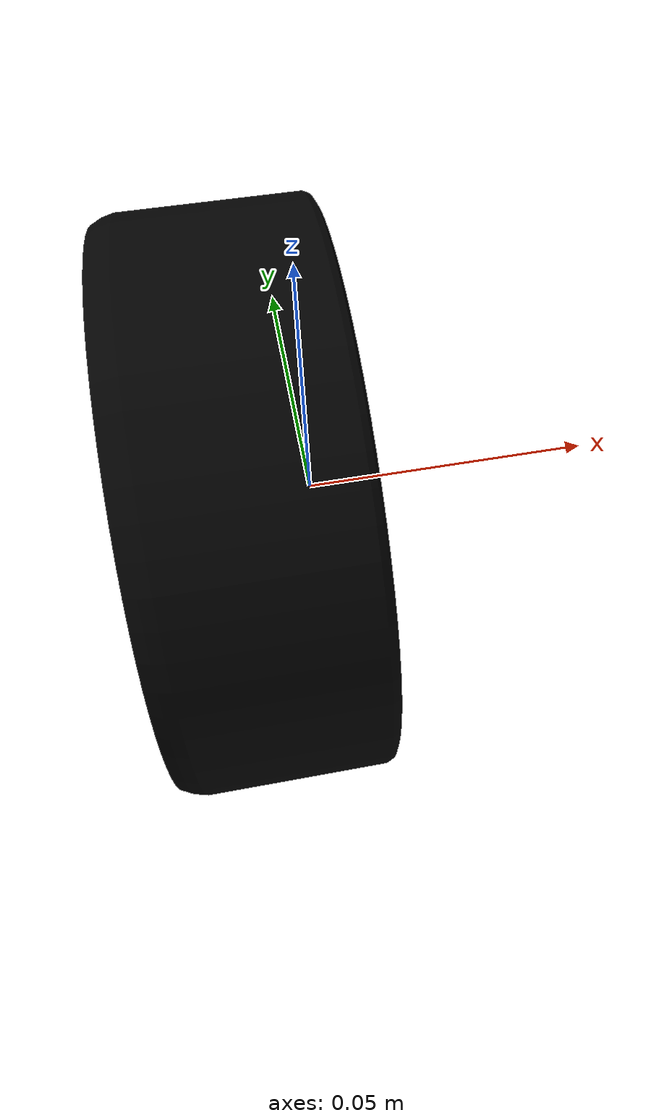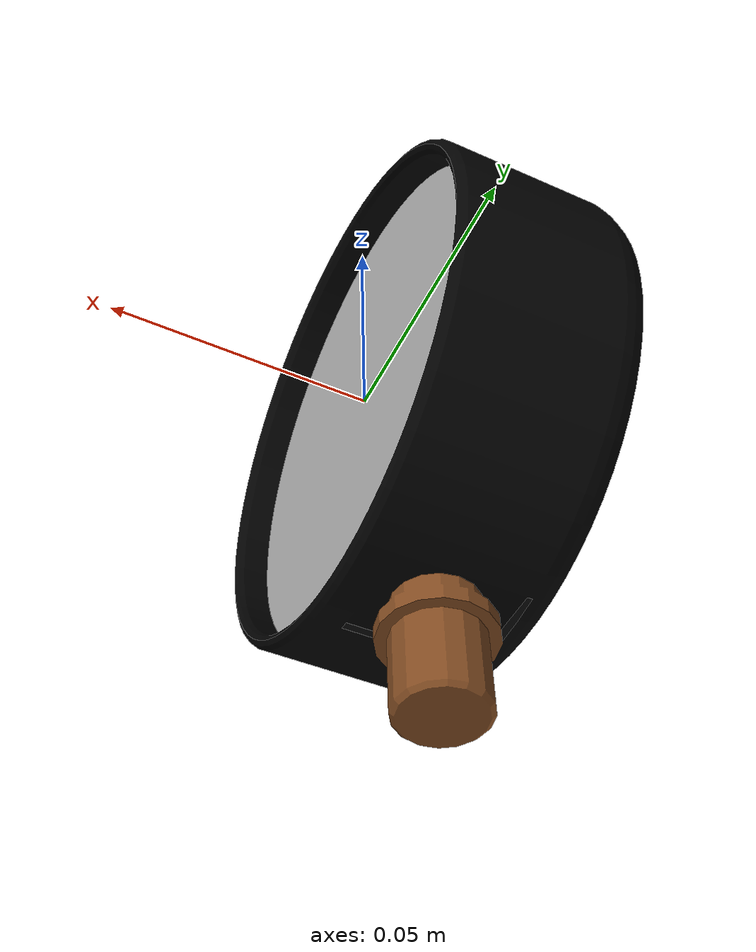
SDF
<?xml version="1.0"?>
<sdf version="1.4">
  <model name="pressure_gauge_501">
    <pose>0 0 0 0 0 0</pose>
    <static>true</static>
    <link name="pressure_gauge_501_link">
      <visual name="pressure_gauge_501_visual">
        <pose>0 0 0 0 0 0</pose>
        <geometry>
          <mesh>
            <uri>model://pressure_gauge_501/meshes/pressure_gauge_501.dae</uri>
          </mesh>
        </geometry>
      </visual>
    </link>
  </model>
</sdf>
